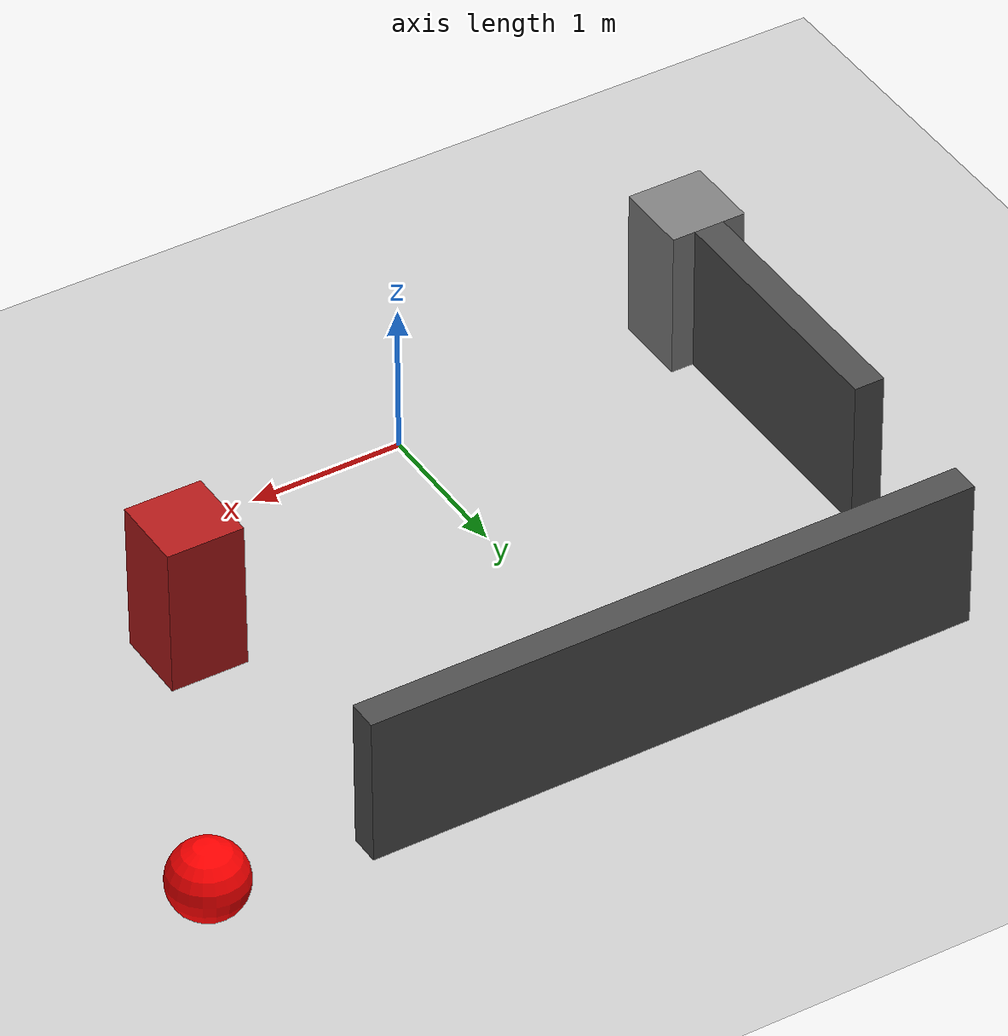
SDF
<sdf version="1.7">
 <world name="humanoid_world">
  <include><uri>model://ground_plane</uri></include>
  <include><uri>model://sun</uri></include>
  <model name="box1">
   <pose>-2 0 0.5 0 0 0</pose>
   <link name="link">
    <collision name="collision"><geometry><box><size>0.5 0.5 1.0</size></box></geometry></collision>
    <visual name="visual">
     <geometry><box><size>0.5 0.5 1.0</size></box></geometry>
     <material>
      <ambient>0.5 0.5 0.5 1</ambient>
      <diffuse>0.5 0.5 0.5 1</diffuse>
      <specular>0.1 0.1 0.1 1</specular>
     </material>
    </visual>
   </link>
  </model>
  <model name="box2">
   <pose>2 1 0.5 0 0 0</pose>
   <link name="link">
    <collision name="collision"><geometry><box><size>0.5 0.5 1.0</size></box></geometry></collision>
    <visual name="visual">
     <geometry><box><size>0.5 0.5 1.0</size></box></geometry>
     <material>
      <ambient>0.5 0.5 0.5 1</ambient>
      <diffuse>0.7 0.1 0.1 1</diffuse>
      <specular>0.1 0.1 0.1 1</specular>
     </material>
    </visual>
   </link>
  </model>
  <model name="wall1">
   <pose>0 3 0.5 0 0 0</pose>
   <link name="link">
    <collision name="collision"><geometry><box><size>4 0.2 1.0</size></box></geometry></collision>
    <visual name="visual">
     <geometry><box><size>4 0.2 1.0</size></box></geometry>
     <material>
      <ambient>0.1 0.1 0.1 1</ambient>
      <diffuse>0.3 0.3 0.3 1</diffuse>
      <specular>0.1 0.1 0.1 1</specular>
     </material>
    </visual>
   </link>
  </model>
  <model name="wall2">
   <pose>-2 1 0.5 0 0 1.57</pose>
   <link name="link">
    <collision name="collision"><geometry><box><size>2 0.2 1.0</size></box></geometry></collision>
    <visual name="visual">
     <geometry><box><size>2 0.2 1.0</size></box></geometry>
     <material>
      <ambient>0.1 0.1 0.1 1</ambient>
      <diffuse>0.3 0.3 0.3 1</diffuse>
      <specular>0.1 0.1 0.1 1</specular>
     </material>
    </visual>
   </link>
  </model>
  <model name="target">
   <pose>3 3 0.25 0 0 0</pose>
   <link name="link">
    <collision name="collision"><geometry><sphere><radius>0.25</radius></sphere></geometry></collision>
    <visual name="visual">
     <geometry><sphere><radius>0.25</radius></sphere></geometry>
     <material><ambient>1 0 0 1</ambient><diffuse>1 0 0 1</diffuse><specular>0.5 0.5 0.5 1</specular></material>
    </visual>
   </link>
  </model>
 </world>
</sdf>
